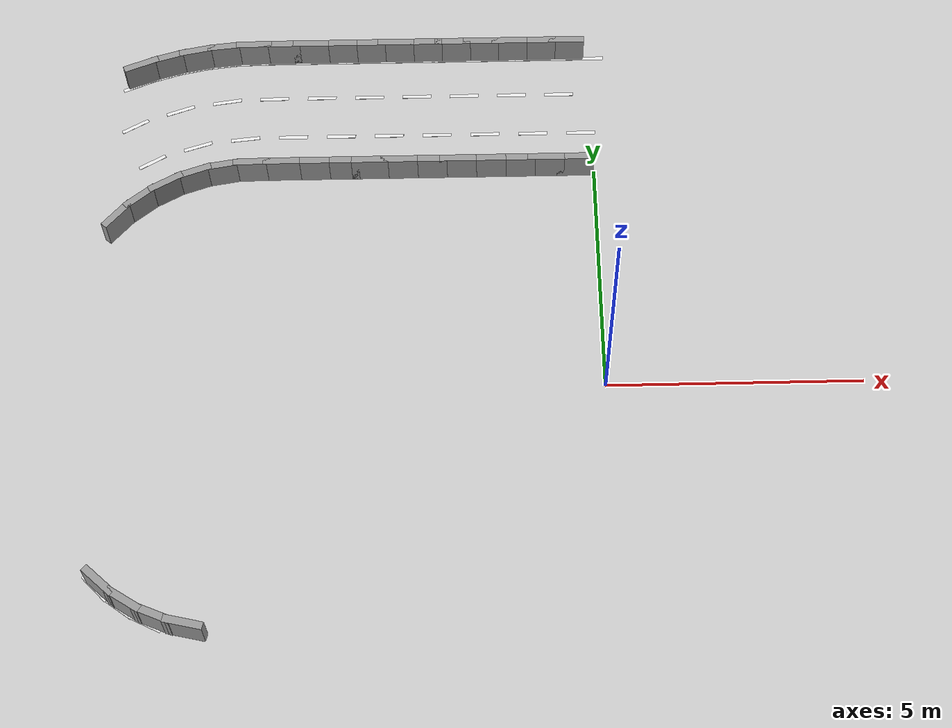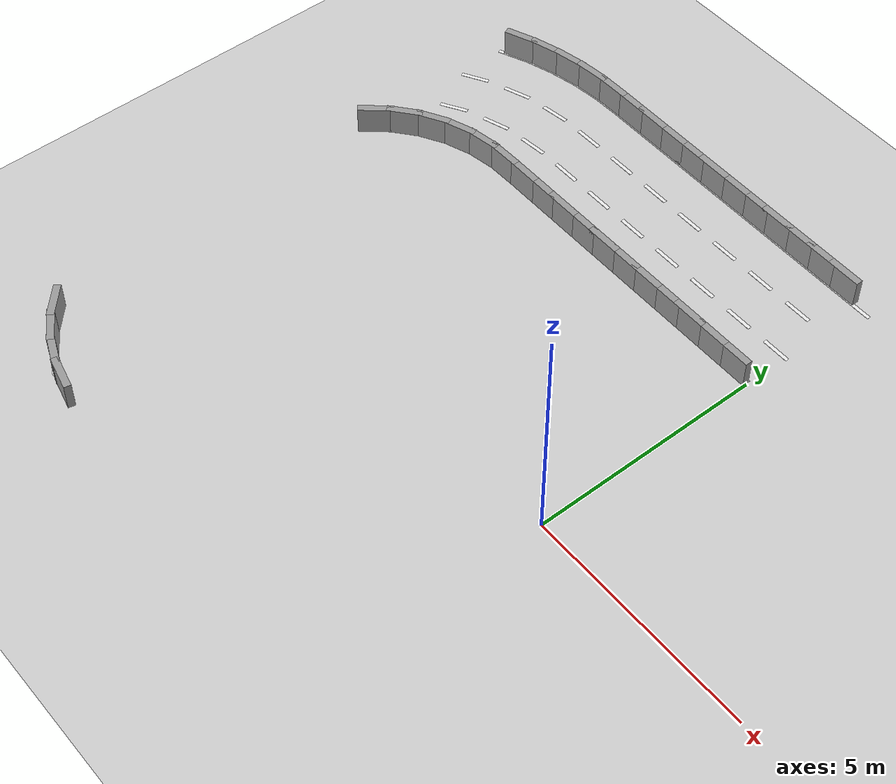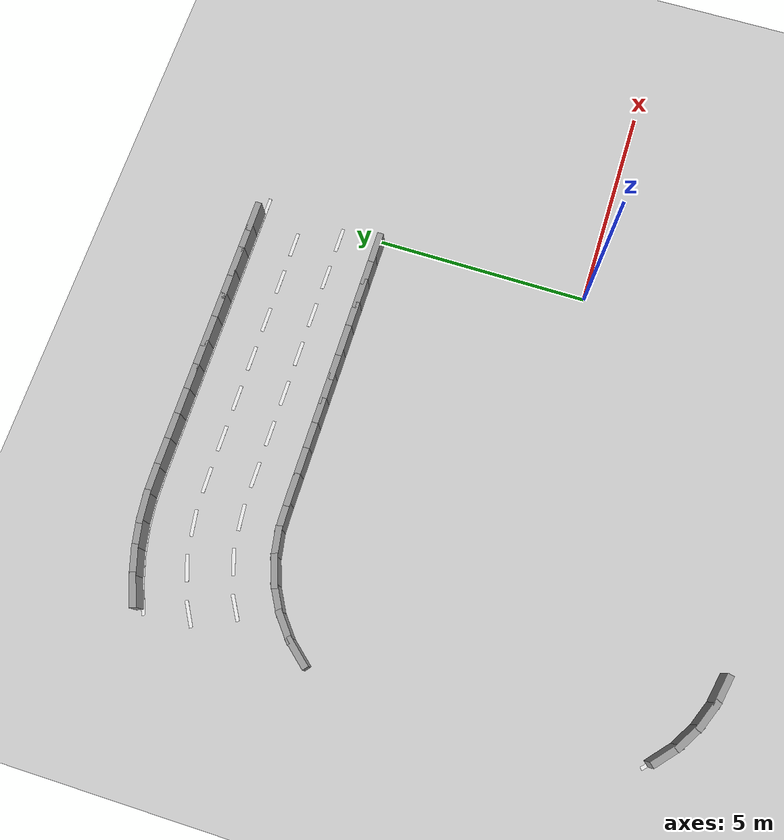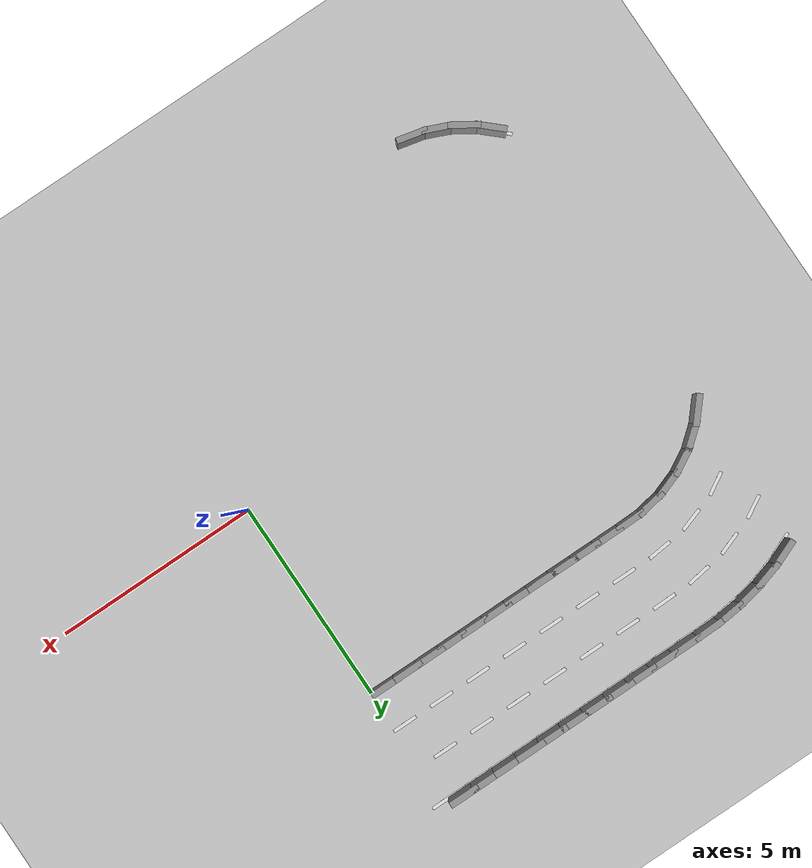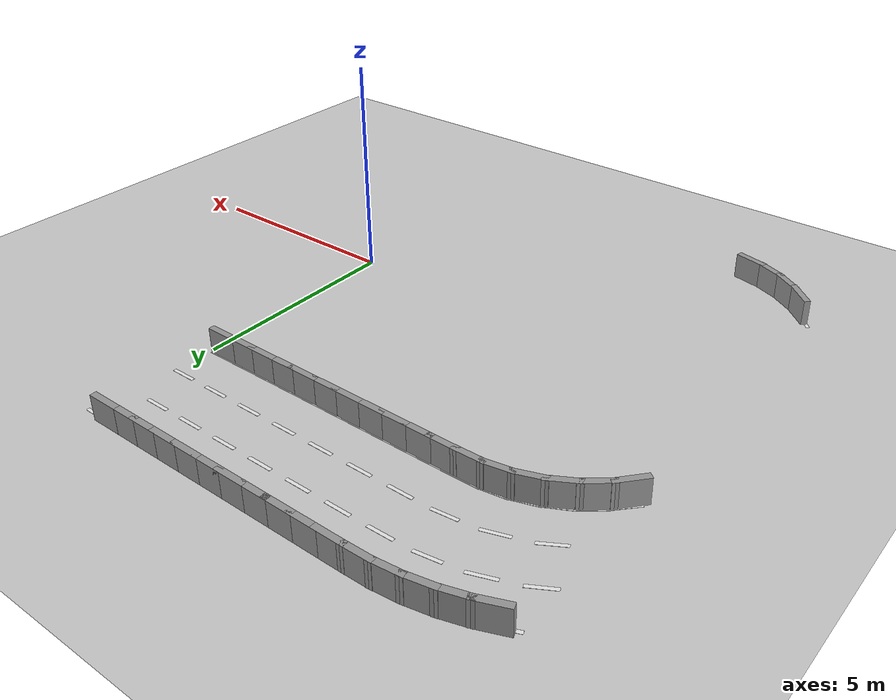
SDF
<sdf version="1.7">
 <world name="default">
  <model name="ground_plane">
   <static>1</static>
   <link name="link">
    <collision name="collision">
     <geometry><plane><normal>0 0 1</normal><size>100 100</size></plane></geometry>
     <surface><friction><ode><mu>100</mu><mu2>50</mu2></ode></friction></surface>
    </collision>
    <visual name="visual">
     <cast_shadows>0</cast_shadows>
     <geometry><plane><normal>0 0 1</normal><size>100 100</size></plane></geometry>
     <material>
      <script><uri>file://media/materials/scripts/gazebo.material</uri><name>Gazebo/Grey</name></script>
     </material>
    </visual>
   </link>
  </model>
  <model name="superspeedway">
   <link name="Wall_21">
    <collision name="Wall_21_Collision">
     <geometry><box><size>0.7500 0.1500 0.6000</size></box></geometry>
     <pose>0 0 0.3000 0 -0 0</pose>
    </collision>
    <visual name="Wall_21_Visual">
     <pose>0 0 0.3000 0 -0 0</pose>
     <geometry><box><size>0.7500 0.1500 0.6000</size></box></geometry>
     <material>
      <script><uri>file://media/materials/scripts/gazebo.material</uri><name>Gazebo/Grey</name></script>
      <ambient>1 1 1 1</ambient>
     </material>
    </visual>
    <pose>-0.4022 5.0000 0 0 -0 3.14159</pose>
   </link>
   <link name="Wall_22">
    <collision name="Wall_22_Collision">
     <geometry><box><size>0.7500 0.1500 0.6000</size></box></geometry>
     <pose>0 0 0.3000 0 -0 0</pose>
    </collision>
    <visual name="Wall_22_Visual">
     <pose>0 0 0.3000 0 -0 0</pose>
     <geometry><box><size>0.7500 0.1500 0.6000</size></box></geometry>
     <material>
      <script><uri>file://media/materials/scripts/gazebo.material</uri><name>Gazebo/Grey</name></script>
      <ambient>1 1 1 1</ambient>
     </material>
    </visual>
    <pose>-1.0022 5.0000 0 0 -0 3.14159</pose>
   </link>
   <link name="Wall_23">
    <collision name="Wall_23_Collision">
     <geometry><box><size>0.7500 0.1500 0.6000</size></box></geometry>
     <pose>0 0 0.3000 0 -0 0</pose>
    </collision>
    <visual name="Wall_23_Visual">
     <pose>0 0 0.3000 0 -0 0</pose>
     <geometry><box><size>0.7500 0.1500 0.6000</size></box></geometry>
     <material>
      <script><uri>file://media/materials/scripts/gazebo.material</uri><name>Gazebo/Grey</name></script>
      <ambient>1 1 1 1</ambient>
     </material>
    </visual>
    <pose>-1.6022 5.0000 0 0 -0 3.14159</pose>
   </link>
   <link name="Wall_24">
    <collision name="Wall_24_Collision">
     <geometry><box><size>0.7500 0.1500 0.6000</size></box></geometry>
     <pose>0 0 0.3000 0 -0 0</pose>
    </collision>
    <visual name="Wall_24_Visual">
     <pose>0 0 0.3000 0 -0 0</pose>
     <geometry><box><size>0.7500 0.1500 0.6000</size></box></geometry>
     <material>
      <script><uri>file://media/materials/scripts/gazebo.material</uri><name>Gazebo/Grey</name></script>
      <ambient>1 1 1 1</ambient>
     </material>
    </visual>
    <pose>-2.2022 5.0000 0 0 -0 3.14159</pose>
   </link>
   <link name="Wall_25">
    <collision name="Wall_25_Collision">
     <geometry><box><size>0.7500 0.1500 0.6000</size></box></geometry>
     <pose>0 0 0.3000 0 -0 0</pose>
    </collision>
    <visual name="Wall_25_Visual">
     <pose>0 0 0.3000 0 -0 0</pose>
     <geometry><box><size>0.7500 0.1500 0.6000</size></box></geometry>
     <material>
      <script><uri>file://media/materials/scripts/gazebo.material</uri><name>Gazebo/Grey</name></script>
      <ambient>1 1 1 1</ambient>
     </material>
    </visual>
    <pose>-2.8022 5.0000 0 0 -0 3.14159</pose>
   </link>
   <link name="Wall_26">
    <collision name="Wall_26_Collision">
     <geometry><box><size>0.7500 0.1500 0.6000</size></box></geometry>
     <pose>0 0 0.3000 0 -0 0</pose>
    </collision>
    <visual name="Wall_26_Visual">
     <pose>0 0 0.3000 0 -0 0</pose>
     <geometry><box><size>0.7500 0.1500 0.6000</size></box></geometry>
     <material>
      <script><uri>file://media/materials/scripts/gazebo.material</uri><name>Gazebo/Grey</name></script>
      <ambient>1 1 1 1</ambient>
     </material>
    </visual>
    <pose>-3.4022 5.0000 0 0 -0 3.14159</pose>
   </link>
   <link name="Wall_27">
    <collision name="Wall_27_Collision">
     <geometry><box><size>0.7500 0.1500 0.6000</size></box></geometry>
     <pose>0 0 0.3000 0 -0 0</pose>
    </collision>
    <visual name="Wall_27_Visual">
     <pose>0 0 0.3000 0 -0 0</pose>
     <geometry><box><size>0.7500 0.1500 0.6000</size></box></geometry>
     <material>
      <script><uri>file://media/materials/scripts/gazebo.material</uri><name>Gazebo/Grey</name></script>
      <ambient>1 1 1 1</ambient>
     </material>
    </visual>
    <pose>-4.0022 5.0000 0 0 -0 3.14159</pose>
   </link>
   <link name="Wall_28">
    <collision name="Wall_28_Collision">
     <geometry><box><size>0.7500 0.1500 0.6000</size></box></geometry>
     <pose>0 0 0.3000 0 -0 0</pose>
    </collision>
    <visual name="Wall_28_Visual">
     <pose>0 0 0.3000 0 -0 0</pose>
     <geometry><box><size>0.7500 0.1500 0.6000</size></box></geometry>
     <material>
      <script><uri>file://media/materials/scripts/gazebo.material</uri><name>Gazebo/Grey</name></script>
      <ambient>1 1 1 1</ambient>
     </material>
    </visual>
    <pose>-4.6022 5.0000 0 0 -0 3.14159</pose>
   </link>
   <link name="Wall_29">
    <collision name="Wall_29_Collision">
     <geometry><box><size>0.7500 0.1500 0.6000</size></box></geometry>
     <pose>0 0 0.3000 0 -0 0</pose>
    </collision>
    <visual name="Wall_29_Visual">
     <pose>0 0 0.3000 0 -0 0</pose>
     <geometry><box><size>0.7500 0.1500 0.6000</size></box></geometry>
     <material>
      <script><uri>file://media/materials/scripts/gazebo.material</uri><name>Gazebo/Grey</name></script>
      <ambient>1 1 1 1</ambient>
     </material>
    </visual>
    <pose>-5.2022 5.0000 0 0 -0 3.14159</pose>
   </link>
   <link name="Wall_30">
    <collision name="Wall_30_Collision">
     <geometry><box><size>0.7500 0.1500 0.6000</size></box></geometry>
     <pose>0 0 0.3000 0 -0 0</pose>
    </collision>
    <visual name="Wall_30_Visual">
     <pose>0 0 0.3000 0 -0 0</pose>
     <geometry><box><size>0.7500 0.1500 0.6000</size></box></geometry>
     <material>
      <script><uri>file://media/materials/scripts/gazebo.material</uri><name>Gazebo/Grey</name></script>
      <ambient>1 1 1 1</ambient>
     </material>
    </visual>
    <pose>-5.8022 5.0000 0 0 -0 3.14159</pose>
   </link>
   <link name="Wall_31">
    <collision name="Wall_31_Collision">
     <geometry><box><size>0.7500 0.1500 0.6000</size></box></geometry>
     <pose>0 0 0.3000 0 -0 0</pose>
    </collision>
    <visual name="Wall_31_Visual">
     <pose>0 0 0.3000 0 -0 0</pose>
     <geometry><box><size>0.7500 0.1500 0.6000</size></box></geometry>
     <material>
      <script><uri>file://media/materials/scripts/gazebo.material</uri><name>Gazebo/Grey</name></script>
      <ambient>1 1 1 1</ambient>
     </material>
    </visual>
    <pose>-6.4022 5.0000 0 0 -0 3.14159</pose>
   </link>
   <link name="Wall_32">
    <collision name="Wall_32_Collision">
     <geometry><box><size>0.7498 0.1500 0.6000</size></box></geometry>
     <pose>0 0 0.3000 0 -0 0</pose>
    </collision>
    <visual name="Wall_32_Visual">
     <pose>0 0 0.3000 0 -0 0</pose>
     <geometry><box><size>0.7498 0.1500 0.6000</size></box></geometry>
     <material>
      <script><uri>file://media/materials/scripts/gazebo.material</uri><name>Gazebo/Grey</name></script>
      <ambient>1 1 1 1</ambient>
     </material>
    </visual>
    <pose>-7.0020 4.9935 0 0 -0 -3.11984</pose>
   </link>
   <link name="Wall_33">
    <collision name="Wall_33_Collision">
     <geometry><box><size>0.7493 0.1500 0.6000</size></box></geometry>
     <pose>0 0 0.3000 0 -0 0</pose>
    </collision>
    <visual name="Wall_33_Visual">
     <pose>0 0 0.3000 0 -0 0</pose>
     <geometry><box><size>0.7493 0.1500 0.6000</size></box></geometry>
     <material>
      <script><uri>file://media/materials/scripts/gazebo.material</uri><name>Gazebo/Grey</name></script>
      <ambient>1 1 1 1</ambient>
     </material>
    </visual>
    <pose>-7.5970 4.9357 0 0 -0 -2.96953</pose>
   </link>
   <link name="Wall_34">
    <collision name="Wall_34_Collision">
     <geometry><box><size>0.7493 0.1500 0.6000</size></box></geometry>
     <pose>0 0 0.3000 0 -0 0</pose>
    </collision>
    <visual name="Wall_34_Visual">
     <pose>0 0 0.3000 0 -0 0</pose>
     <geometry><box><size>0.7493 0.1500 0.6000</size></box></geometry>
     <material>
      <script><uri>file://media/materials/scripts/gazebo.material</uri><name>Gazebo/Grey</name></script>
      <ambient>1 1 1 1</ambient>
     </material>
    </visual>
    <pose>-8.1744 4.7834 0 0 -0 -2.79811</pose>
   </link>
   <link name="Wall_35">
    <collision name="Wall_35_Collision">
     <geometry><box><size>0.7493 0.1500 0.6000</size></box></geometry>
     <pose>0 0 0.3000 0 -0 0</pose>
    </collision>
    <visual name="Wall_35_Visual">
     <pose>0 0 0.3000 0 -0 0</pose>
     <geometry><box><size>0.7493 0.1500 0.6000</size></box></geometry>
     <material>
      <script><uri>file://media/materials/scripts/gazebo.material</uri><name>Gazebo/Grey</name></script>
      <ambient>1 1 1 1</ambient>
     </material>
    </visual>
    <pose>-8.7173 4.5350 0 0 -0 -2.62668</pose>
   </link>
   <link name="Wall_36">
    <collision name="Wall_36_Collision">
     <geometry><box><size>0.7493 0.1500 0.6000</size></box></geometry>
     <pose>0 0 0.3000 0 -0 0</pose>
    </collision>
    <visual name="Wall_36_Visual">
     <pose>0 0 0.3000 0 -0 0</pose>
     <geometry><box><size>0.7493 0.1500 0.6000</size></box></geometry>
     <material>
      <script><uri>file://media/materials/scripts/gazebo.material</uri><name>Gazebo/Grey</name></script>
      <ambient>1 1 1 1</ambient>
     </material>
    </visual>
    <pose>-9.2098 4.1975 0 0 -0 -2.45525</pose>
   </link>
   <link name="Wall_37">
    <collision name="Wall_37_Collision">
     <geometry><box><size>0.7493 0.1500 0.6000</size></box></geometry>
     <pose>0 0 0.3000 0 -0 0</pose>
    </collision>
    <visual name="Wall_37_Visual">
     <pose>0 0 0.3000 0 -0 0</pose>
     <geometry><box><size>0.7493 0.1500 0.6000</size></box></geometry>
     <material>
      <script><uri>file://media/materials/scripts/gazebo.material</uri><name>Gazebo/Grey</name></script>
      <ambient>1 1 1 1</ambient>
     </material>
    </visual>
    <pose>-9.6376 3.7810 0 0 -0 -2.28382</pose>
   </link>
   <link name="Wall_51">
    <collision name="Wall_51_Collision">
     <geometry><box><size>0.7493 0.1500 0.6000</size></box></geometry>
     <pose>0 0 0.3000 0 -0 0</pose>
    </collision>
    <visual name="Wall_51_Visual">
     <pose>0 0 0.3000 0 -0 0</pose>
     <geometry><box><size>0.7493 0.1500 0.6000</size></box></geometry>
     <material>
      <script><uri>file://media/materials/scripts/gazebo.material</uri><name>Gazebo/Grey</name></script>
      <ambient>1 1 1 1</ambient>
     </material>
    </visual>
    <pose>-9.3538 -4.0729 0 0 -0 -0.74096</pose>
   </link>
   <link name="Wall_52">
    <collision name="Wall_52_Collision">
     <geometry><box><size>0.7493 0.1500 0.6000</size></box></geometry>
     <pose>0 0 0.3000 0 -0 0</pose>
    </collision>
    <visual name="Wall_52_Visual">
     <pose>0 0 0.3000 0 -0 0</pose>
     <geometry><box><size>0.7493 0.1500 0.6000</size></box></geometry>
     <material>
      <script><uri>file://media/materials/scripts/gazebo.material</uri><name>Gazebo/Grey</name></script>
      <ambient>1 1 1 1</ambient>
     </material>
    </visual>
    <pose>-8.8804 -4.4367 0 0 -0 -0.56954</pose>
   </link>
   <link name="Wall_53">
    <collision name="Wall_53_Collision">
     <geometry><box><size>0.7493 0.1500 0.6000</size></box></geometry>
     <pose>0 0 0.3000 0 -0 0</pose>
    </collision>
    <visual name="Wall_53_Visual">
     <pose>0 0 0.3000 0 -0 0</pose>
     <geometry><box><size>0.7493 0.1500 0.6000</size></box></geometry>
     <material>
      <script><uri>file://media/materials/scripts/gazebo.material</uri><name>Gazebo/Grey</name></script>
      <ambient>1 1 1 1</ambient>
     </material>
    </visual>
    <pose>-8.3519 -4.7144 0 0 -0 -0.39811</pose>
   </link>
   <link name="Wall_54">
    <collision name="Wall_54_Collision">
     <geometry><box><size>0.7493 0.1500 0.6000</size></box></geometry>
     <pose>0 0 0.3000 0 -0 0</pose>
    </collision>
    <visual name="Wall_54_Visual">
     <pose>0 0 0.3000 0 -0 0</pose>
     <geometry><box><size>0.7493 0.1500 0.6000</size></box></geometry>
     <material>
      <script><uri>file://media/materials/scripts/gazebo.material</uri><name>Gazebo/Grey</name></script>
      <ambient>1 1 1 1</ambient>
     </material>
    </visual>
    <pose>-7.7837 -4.8979 0 0 -0 -0.22668</pose>
   </link>
   <link name="Wall_122">
    <collision name="Wall_122_Collision">
     <geometry><box><size>0.7500 0.1500 0.6000</size></box></geometry>
     <pose>0 0 0.3000 0 -0 0</pose>
    </collision>
    <visual name="Wall_122_Visual">
     <pose>0 0 0.3000 0 -0 0</pose>
     <geometry><box><size>0.7500 0.1500 0.6000</size></box></geometry>
     <material>
      <script><uri>file://media/materials/scripts/gazebo.material</uri><name>Gazebo/Grey</name></script>
      <ambient>1 1 1 1</ambient>
     </material>
    </visual>
    <pose>-0.4899 8.0000 0 0 -0 3.14159</pose>
   </link>
   <link name="Wall_123">
    <collision name="Wall_123_Collision">
     <geometry><box><size>0.7500 0.1500 0.6000</size></box></geometry>
     <pose>0 0 0.3000 0 -0 0</pose>
    </collision>
    <visual name="Wall_123_Visual">
     <pose>0 0 0.3000 0 -0 0</pose>
     <geometry><box><size>0.7500 0.1500 0.6000</size></box></geometry>
     <material>
      <script><uri>file://media/materials/scripts/gazebo.material</uri><name>Gazebo/Grey</name></script>
      <ambient>1 1 1 1</ambient>
     </material>
    </visual>
    <pose>-1.0899 8.0000 0 0 -0 3.14159</pose>
   </link>
   <link name="Wall_124">
    <collision name="Wall_124_Collision">
     <geometry><box><size>0.7500 0.1500 0.6000</size></box></geometry>
     <pose>0 0 0.3000 0 -0 0</pose>
    </collision>
    <visual name="Wall_124_Visual">
     <pose>0 0 0.3000 0 -0 0</pose>
     <geometry><box><size>0.7500 0.1500 0.6000</size></box></geometry>
     <material>
      <script><uri>file://media/materials/scripts/gazebo.material</uri><name>Gazebo/Grey</name></script>
      <ambient>1 1 1 1</ambient>
     </material>
    </visual>
    <pose>-1.6899 8.0000 0 0 -0 3.14159</pose>
   </link>
   <link name="Wall_125">
    <collision name="Wall_125_Collision">
     <geometry><box><size>0.7500 0.1500 0.6000</size></box></geometry>
     <pose>0 0 0.3000 0 -0 0</pose>
    </collision>
    <visual name="Wall_125_Visual">
     <pose>0 0 0.3000 0 -0 0</pose>
     <geometry><box><size>0.7500 0.1500 0.6000</size></box></geometry>
     <material>
      <script><uri>file://media/materials/scripts/gazebo.material</uri><name>Gazebo/Grey</name></script>
      <ambient>1 1 1 1</ambient>
     </material>
    </visual>
    <pose>-2.2899 8.0000 0 0 -0 3.14159</pose>
   </link>
   <link name="Wall_126">
    <collision name="Wall_126_Collision">
     <geometry><box><size>0.7500 0.1500 0.6000</size></box></geometry>
     <pose>0 0 0.3000 0 -0 0</pose>
    </collision>
    <visual name="Wall_126_Visual">
     <pose>0 0 0.3000 0 -0 0</pose>
     <geometry><box><size>0.7500 0.1500 0.6000</size></box></geometry>
     <material>
      <script><uri>file://media/materials/scripts/gazebo.material</uri><name>Gazebo/Grey</name></script>
      <ambient>1 1 1 1</ambient>
     </material>
    </visual>
    <pose>-2.8899 8.0000 0 0 -0 3.14159</pose>
   </link>
   <link name="Wall_127">
    <collision name="Wall_127_Collision">
     <geometry><box><size>0.7500 0.1500 0.6000</size></box></geometry>
     <pose>0 0 0.3000 0 -0 0</pose>
    </collision>
    <visual name="Wall_127_Visual">
     <pose>0 0 0.3000 0 -0 0</pose>
     <geometry><box><size>0.7500 0.1500 0.6000</size></box></geometry>
     <material>
      <script><uri>file://media/materials/scripts/gazebo.material</uri><name>Gazebo/Grey</name></script>
      <ambient>1 1 1 1</ambient>
     </material>
    </visual>
    <pose>-3.4899 8.0000 0 0 -0 3.14159</pose>
   </link>
   <link name="Wall_128">
    <collision name="Wall_128_Collision">
     <geometry><box><size>0.7500 0.1500 0.6000</size></box></geometry>
     <pose>0 0 0.3000 0 -0 0</pose>
    </collision>
    <visual name="Wall_128_Visual">
     <pose>0 0 0.3000 0 -0 0</pose>
     <geometry><box><size>0.7500 0.1500 0.6000</size></box></geometry>
     <material>
      <script><uri>file://media/materials/scripts/gazebo.material</uri><name>Gazebo/Grey</name></script>
      <ambient>1 1 1 1</ambient>
     </material>
    </visual>
    <pose>-4.0899 8.0000 0 0 -0 3.14159</pose>
   </link>
   <link name="Wall_129">
    <collision name="Wall_129_Collision">
     <geometry><box><size>0.7500 0.1500 0.6000</size></box></geometry>
     <pose>0 0 0.3000 0 -0 0</pose>
    </collision>
    <visual name="Wall_129_Visual">
     <pose>0 0 0.3000 0 -0 0</pose>
     <geometry><box><size>0.7500 0.1500 0.6000</size></box></geometry>
     <material>
      <script><uri>file://media/materials/scripts/gazebo.material</uri><name>Gazebo/Grey</name></script>
      <ambient>1 1 1 1</ambient>
     </material>
    </visual>
    <pose>-4.6899 8.0000 0 0 -0 3.14159</pose>
   </link>
   <link name="Wall_130">
    <collision name="Wall_130_Collision">
     <geometry><box><size>0.7500 0.1500 0.6000</size></box></geometry>
     <pose>0 0 0.3000 0 -0 0</pose>
    </collision>
    <visual name="Wall_130_Visual">
     <pose>0 0 0.3000 0 -0 0</pose>
     <geometry><box><size>0.7500 0.1500 0.6000</size></box></geometry>
     <material>
      <script><uri>file://media/materials/scripts/gazebo.material</uri><name>Gazebo/Grey</name></script>
      <ambient>1 1 1 1</ambient>
     </material>
    </visual>
    <pose>-5.2899 8.0000 0 0 -0 3.14159</pose>
   </link>
   <link name="Wall_131">
    <collision name="Wall_131_Collision">
     <geometry><box><size>0.7500 0.1500 0.6000</size></box></geometry>
     <pose>0 0 0.3000 0 -0 0</pose>
    </collision>
    <visual name="Wall_131_Visual">
     <pose>0 0 0.3000 0 -0 0</pose>
     <geometry><box><size>0.7500 0.1500 0.6000</size></box></geometry>
     <material>
      <script><uri>file://media/materials/scripts/gazebo.material</uri><name>Gazebo/Grey</name></script>
      <ambient>1 1 1 1</ambient>
     </material>
    </visual>
    <pose>-5.8899 8.0000 0 0 -0 3.14159</pose>
   </link>
   <link name="Wall_132">
    <collision name="Wall_132_Collision">
     <geometry><box><size>0.7500 0.1500 0.6000</size></box></geometry>
     <pose>0 0 0.3000 0 -0 0</pose>
    </collision>
    <visual name="Wall_132_Visual">
     <pose>0 0 0.3000 0 -0 0</pose>
     <geometry><box><size>0.7500 0.1500 0.6000</size></box></geometry>
     <material>
      <script><uri>file://media/materials/scripts/gazebo.material</uri><name>Gazebo/Grey</name></script>
      <ambient>1 1 1 1</ambient>
     </material>
    </visual>
    <pose>-6.4899 8.0000 0 0 -0 3.14159</pose>
   </link>
   <link name="Wall_133">
    <collision name="Wall_133_Collision">
     <geometry><box><size>0.7499 0.1500 0.6000</size></box></geometry>
     <pose>0 0 0.3000 0 -0 0</pose>
    </collision>
    <visual name="Wall_133_Visual">
     <pose>0 0 0.3000 0 -0 0</pose>
     <geometry><box><size>0.7499 0.1500 0.6000</size></box></geometry>
     <material>
      <script><uri>file://media/materials/scripts/gazebo.material</uri><name>Gazebo/Grey</name></script>
      <ambient>1 1 1 1</ambient>
     </material>
    </visual>
    <pose>-7.0897 7.9941 0 0 -0 -3.12208</pose>
   </link>
   <link name="Wall_134">
    <collision name="Wall_134_Collision">
     <geometry><box><size>0.7498 0.1500 0.6000</size></box></geometry>
     <pose>0 0 0.3000 0 -0 0</pose>
    </collision>
    <visual name="Wall_134_Visual">
     <pose>0 0 0.3000 0 -0 0</pose>
     <geometry><box><size>0.7498 0.1500 0.6000</size></box></geometry>
     <material>
      <script><uri>file://media/materials/scripts/gazebo.material</uri><name>Gazebo/Grey</name></script>
      <ambient>1 1 1 1</ambient>
     </material>
    </visual>
    <pose>-7.6878 7.9565 0 0 -0 -3.03547</pose>
   </link>
   <link name="Wall_135">
    <collision name="Wall_135_Collision">
     <geometry><box><size>0.7498 0.1500 0.6000</size></box></geometry>
     <pose>0 0 0.3000 0 -0 0</pose>
    </collision>
    <visual name="Wall_135_Visual">
     <pose>0 0 0.3000 0 -0 0</pose>
     <geometry><box><size>0.7498 0.1500 0.6000</size></box></geometry>
     <material>
      <script><uri>file://media/materials/scripts/gazebo.material</uri><name>Gazebo/Grey</name></script>
      <ambient>1 1 1 1</ambient>
     </material>
    </visual>
    <pose>-8.2800 7.8656 0 0 -0 -2.94314</pose>
   </link>
   <link name="Wall_136">
    <collision name="Wall_136_Collision">
     <geometry><box><size>0.7498 0.1500 0.6000</size></box></geometry>
     <pose>0 0 0.3000 0 -0 0</pose>
    </collision>
    <visual name="Wall_136_Visual">
     <pose>0 0 0.3000 0 -0 0</pose>
     <geometry><box><size>0.7498 0.1500 0.6000</size></box></geometry>
     <material>
      <script><uri>file://media/materials/scripts/gazebo.material</uri><name>Gazebo/Grey</name></script>
      <ambient>1 1 1 1</ambient>
     </material>
    </visual>
    <pose>-8.8614 7.7206 0 0 -0 -2.85086</pose>
   </link>
   <link name="Wall_137">
    <collision name="Wall_137_Collision">
     <geometry><box><size>0.7498 0.1500 0.6000</size></box></geometry>
     <pose>0 0 0.3000 0 -0 0</pose>
    </collision>
    <visual name="Wall_137_Visual">
     <pose>0 0 0.3000 0 -0 0</pose>
     <geometry><box><size>0.7498 0.1500 0.6000</size></box></geometry>
     <material>
      <script><uri>file://media/materials/scripts/gazebo.material</uri><name>Gazebo/Grey</name></script>
      <ambient>1 1 1 1</ambient>
     </material>
    </visual>
    <pose>-9.4268 7.5225 0 0 -0 -2.75853</pose>
   </link>
   <link name="Paint_21">
    <visual name="Paint_21_Visual">
     <pose>0 0 0.0020 0 -0 0</pose>
     <geometry><box><size>0.6800 0.0800 0.0040</size></box></geometry>
     <material>
      <script><uri>file://media/materials/scripts/gazebo.material</uri><name>Gazebo/White</name></script>
      <ambient>1 1 1 1</ambient>
     </material>
    </visual>
    <pose>-0.3544 5.0600 0 0 -0 3.14159</pose>
   </link>
   <link name="Paint_22">
    <visual name="Paint_22_Visual">
     <pose>0 0 0.0020 0 -0 0</pose>
     <geometry><box><size>0.6800 0.0800 0.0040</size></box></geometry>
     <material>
      <script><uri>file://media/materials/scripts/gazebo.material</uri><name>Gazebo/White</name></script>
      <ambient>1 1 1 1</ambient>
     </material>
    </visual>
    <pose>-0.9544 5.0600 0 0 -0 3.14159</pose>
   </link>
   <link name="Paint_23">
    <visual name="Paint_23_Visual">
     <pose>0 0 0.0020 0 -0 0</pose>
     <geometry><box><size>0.6800 0.0800 0.0040</size></box></geometry>
     <material>
      <script><uri>file://media/materials/scripts/gazebo.material</uri><name>Gazebo/White</name></script>
      <ambient>1 1 1 1</ambient>
     </material>
    </visual>
    <pose>-1.5544 5.0600 0 0 -0 3.14159</pose>
   </link>
   <link name="Paint_24">
    <visual name="Paint_24_Visual">
     <pose>0 0 0.0020 0 -0 0</pose>
     <geometry><box><size>0.6800 0.0800 0.0040</size></box></geometry>
     <material>
      <script><uri>file://media/materials/scripts/gazebo.material</uri><name>Gazebo/White</name></script>
      <ambient>1 1 1 1</ambient>
     </material>
    </visual>
    <pose>-2.1544 5.0600 0 0 -0 3.14159</pose>
   </link>
   <link name="Paint_25">
    <visual name="Paint_25_Visual">
     <pose>0 0 0.0020 0 -0 0</pose>
     <geometry><box><size>0.6800 0.0800 0.0040</size></box></geometry>
     <material>
      <script><uri>file://media/materials/scripts/gazebo.material</uri><name>Gazebo/White</name></script>
      <ambient>1 1 1 1</ambient>
     </material>
    </visual>
    <pose>-2.7544 5.0600 0 0 -0 3.14159</pose>
   </link>
   <link name="Paint_26">
    <visual name="Paint_26_Visual">
     <pose>0 0 0.0020 0 -0 0</pose>
     <geometry><box><size>0.6800 0.0800 0.0040</size></box></geometry>
     <material>
      <script><uri>file://media/materials/scripts/gazebo.material</uri><name>Gazebo/White</name></script>
      <ambient>1 1 1 1</ambient>
     </material>
    </visual>
    <pose>-3.3544 5.0600 0 0 -0 3.14159</pose>
   </link>
   <link name="Paint_27">
    <visual name="Paint_27_Visual">
     <pose>0 0 0.0020 0 -0 0</pose>
     <geometry><box><size>0.6800 0.0800 0.0040</size></box></geometry>
     <material>
      <script><uri>file://media/materials/scripts/gazebo.material</uri><name>Gazebo/White</name></script>
      <ambient>1 1 1 1</ambient>
     </material>
    </visual>
    <pose>-3.9544 5.0600 0 0 -0 3.14159</pose>
   </link>
   <link name="Paint_28">
    <visual name="Paint_28_Visual">
     <pose>0 0 0.0020 0 -0 0</pose>
     <geometry><box><size>0.6800 0.0800 0.0040</size></box></geometry>
     <material>
      <script><uri>file://media/materials/scripts/gazebo.material</uri><name>Gazebo/White</name></script>
      <ambient>1 1 1 1</ambient>
     </material>
    </visual>
    <pose>-4.5544 5.0600 0 0 -0 3.14159</pose>
   </link>
   <link name="Paint_29">
    <visual name="Paint_29_Visual">
     <pose>0 0 0.0020 0 -0 0</pose>
     <geometry><box><size>0.6800 0.0800 0.0040</size></box></geometry>
     <material>
      <script><uri>file://media/materials/scripts/gazebo.material</uri><name>Gazebo/White</name></script>
      <ambient>1 1 1 1</ambient>
     </material>
    </visual>
    <pose>-5.1544 5.0600 0 0 -0 3.14159</pose>
   </link>
   <link name="Paint_30">
    <visual name="Paint_30_Visual">
     <pose>0 0 0.0020 0 -0 0</pose>
     <geometry><box><size>0.6800 0.0800 0.0040</size></box></geometry>
     <material>
      <script><uri>file://media/materials/scripts/gazebo.material</uri><name>Gazebo/White</name></script>
      <ambient>1 1 1 1</ambient>
     </material>
    </visual>
    <pose>-5.7544 5.0600 0 0 -0 3.14159</pose>
   </link>
   <link name="Paint_31">
    <visual name="Paint_31_Visual">
     <pose>0 0 0.0020 0 -0 0</pose>
     <geometry><box><size>0.6800 0.0800 0.0040</size></box></geometry>
     <material>
      <script><uri>file://media/materials/scripts/gazebo.material</uri><name>Gazebo/White</name></script>
      <ambient>1 1 1 1</ambient>
     </material>
    </visual>
    <pose>-6.3544 5.0600 0 0 -0 -3.14148</pose>
   </link>
   <link name="Paint_32">
    <visual name="Paint_32_Visual">
     <pose>0 0 0.0020 0 -0 0</pose>
     <geometry><box><size>0.6799 0.0800 0.0040</size></box></geometry>
     <material>
      <script><uri>file://media/materials/scripts/gazebo.material</uri><name>Gazebo/White</name></script>
      <ambient>1 1 1 1</ambient>
     </material>
    </visual>
    <pose>-6.9544 5.0560 0 0 -0 -3.13003</pose>
   </link>
   <link name="Paint_33">
    <visual name="Paint_33_Visual">
     <pose>0 0 0.0020 0 -0 0</pose>
     <geometry><box><size>0.6799 0.0800 0.0040</size></box></geometry>
     <material>
      <script><uri>file://media/materials/scripts/gazebo.material</uri><name>Gazebo/White</name></script>
      <ambient>1 1 1 1</ambient>
     </material>
    </visual>
    <pose>-7.5507 5.0040 0 0 -0 -2.99687</pose>
   </link>
   <link name="Paint_34">
    <visual name="Paint_34_Visual">
     <pose>0 0 0.0020 0 -0 0</pose>
     <geometry><box><size>0.6799 0.0800 0.0040</size></box></geometry>
     <material>
      <script><uri>file://media/materials/scripts/gazebo.material</uri><name>Gazebo/White</name></script>
      <ambient>1 1 1 1</ambient>
     </material>
    </visual>
    <pose>-8.1313 4.8617 0 0 -0 -2.82815</pose>
   </link>
   <link name="Paint_35">
    <visual name="Paint_35_Visual">
     <pose>0 0 0.0020 0 -0 0</pose>
     <geometry><box><size>0.6799 0.0800 0.0040</size></box></geometry>
     <material>
      <script><uri>file://media/materials/scripts/gazebo.material</uri><name>Gazebo/White</name></script>
      <ambient>1 1 1 1</ambient>
     </material>
    </visual>
    <pose>-8.6798 4.6239 0 0 -0 -2.65940</pose>
   </link>
   <link name="Paint_36">
    <visual name="Paint_36_Visual">
     <pose>0 0 0.0020 0 -0 0</pose>
     <geometry><box><size>0.6799 0.0800 0.0040</size></box></geometry>
     <material>
      <script><uri>file://media/materials/scripts/gazebo.material</uri><name>Gazebo/White</name></script>
      <ambient>1 1 1 1</ambient>
     </material>
    </visual>
    <pose>-9.1805 4.2974 0 0 -0 -2.49067</pose>
   </link>
   <link name="Paint_37">
    <visual name="Paint_37_Visual">
     <pose>0 0 0.0020 0 -0 0</pose>
     <geometry><box><size>0.6799 0.0800 0.0040</size></box></geometry>
     <material>
      <script><uri>file://media/materials/scripts/gazebo.material</uri><name>Gazebo/White</name></script>
      <ambient>1 1 1 1</ambient>
     </material>
    </visual>
    <pose>-9.6193 3.8914 0 0 -0 -2.32193</pose>
   </link>
   <link name="Paint_51">
    <visual name="Paint_51_Visual">
     <pose>0 0 0.0020 0 -0 0</pose>
     <geometry><box><size>0.6798 0.0800 0.0040</size></box></geometry>
     <material>
      <script><uri>file://media/materials/scripts/gazebo.material</uri><name>Gazebo/White</name></script>
      <ambient>1 1 1 1</ambient>
     </material>
    </visual>
    <pose>-9.5243 -3.9907 0 0 -0 -0.80328</pose>
   </link>
   <link name="Paint_52">
    <visual name="Paint_52_Visual">
     <pose>0 0 0.0020 0 -0 0</pose>
     <geometry><box><size>0.6798 0.0800 0.0040</size></box></geometry>
     <material>
      <script><uri>file://media/materials/scripts/gazebo.material</uri><name>Gazebo/White</name></script>
      <ambient>1 1 1 1</ambient>
     </material>
    </visual>
    <pose>-9.0701 -4.3792 0 0 -0 -0.63454</pose>
   </link>
   <link name="Paint_53">
    <visual name="Paint_53_Visual">
     <pose>0 0 0.0020 0 -0 0</pose>
     <geometry><box><size>0.6798 0.0800 0.0040</size></box></geometry>
     <material>
      <script><uri>file://media/materials/scripts/gazebo.material</uri><name>Gazebo/White</name></script>
      <ambient>1 1 1 1</ambient>
     </material>
    </visual>
    <pose>-8.5572 -4.6859 0 0 -0 -0.46582</pose>
   </link>
   <link name="Paint_122">
    <visual name="Paint_122_Visual">
     <pose>0 0 0.0020 0 -0 0</pose>
     <geometry><box><size>0.6800 0.0800 0.0040</size></box></geometry>
     <material>
      <script><uri>file://media/materials/scripts/gazebo.material</uri><name>Gazebo/White</name></script>
      <ambient>1 1 1 1</ambient>
     </material>
    </visual>
    <pose>-0.0278 7.9400 0 0 -0 3.14159</pose>
   </link>
   <link name="Paint_123">
    <visual name="Paint_123_Visual">
     <pose>0 0 0.0020 0 -0 0</pose>
     <geometry><box><size>0.6800 0.0800 0.0040</size></box></geometry>
     <material>
      <script><uri>file://media/materials/scripts/gazebo.material</uri><name>Gazebo/White</name></script>
      <ambient>1 1 1 1</ambient>
     </material>
    </visual>
    <pose>-0.6278 7.9400 0 0 -0 3.14159</pose>
   </link>
   <link name="Paint_124">
    <visual name="Paint_124_Visual">
     <pose>0 0 0.0020 0 -0 0</pose>
     <geometry><box><size>0.6800 0.0800 0.0040</size></box></geometry>
     <material>
      <script><uri>file://media/materials/scripts/gazebo.material</uri><name>Gazebo/White</name></script>
      <ambient>1 1 1 1</ambient>
     </material>
    </visual>
    <pose>-1.2278 7.9400 0 0 -0 3.14159</pose>
   </link>
   <link name="Paint_125">
    <visual name="Paint_125_Visual">
     <pose>0 0 0.0020 0 -0 0</pose>
     <geometry><box><size>0.6800 0.0800 0.0040</size></box></geometry>
     <material>
      <script><uri>file://media/materials/scripts/gazebo.material</uri><name>Gazebo/White</name></script>
      <ambient>1 1 1 1</ambient>
     </material>
    </visual>
    <pose>-1.8278 7.9400 0 0 -0 3.14159</pose>
   </link>
   <link name="Paint_126">
    <visual name="Paint_126_Visual">
     <pose>0 0 0.0020 0 -0 0</pose>
     <geometry><box><size>0.6800 0.0800 0.0040</size></box></geometry>
     <material>
      <script><uri>file://media/materials/scripts/gazebo.material</uri><name>Gazebo/White</name></script>
      <ambient>1 1 1 1</ambient>
     </material>
    </visual>
    <pose>-2.4278 7.9400 0 0 -0 3.14159</pose>
   </link>
   <link name="Paint_127">
    <visual name="Paint_127_Visual">
     <pose>0 0 0.0020 0 -0 0</pose>
     <geometry><box><size>0.6800 0.0800 0.0040</size></box></geometry>
     <material>
      <script><uri>file://media/materials/scripts/gazebo.material</uri><name>Gazebo/White</name></script>
      <ambient>1 1 1 1</ambient>
     </material>
    </visual>
    <pose>-3.0278 7.9400 0 0 -0 3.14159</pose>
   </link>
   <link name="Paint_128">
    <visual name="Paint_128_Visual">
     <pose>0 0 0.0020 0 -0 0</pose>
     <geometry><box><size>0.6800 0.0800 0.0040</size></box></geometry>
     <material>
      <script><uri>file://media/materials/scripts/gazebo.material</uri><name>Gazebo/White</name></script>
      <ambient>1 1 1 1</ambient>
     </material>
    </visual>
    <pose>-3.6278 7.9400 0 0 -0 3.14159</pose>
   </link>
   <link name="Paint_129">
    <visual name="Paint_129_Visual">
     <pose>0 0 0.0020 0 -0 0</pose>
     <geometry><box><size>0.6800 0.0800 0.0040</size></box></geometry>
     <material>
      <script><uri>file://media/materials/scripts/gazebo.material</uri><name>Gazebo/White</name></script>
      <ambient>1 1 1 1</ambient>
     </material>
    </visual>
    <pose>-4.2278 7.9400 0 0 -0 3.14159</pose>
   </link>
   <link name="Paint_130">
    <visual name="Paint_130_Visual">
     <pose>0 0 0.0020 0 -0 0</pose>
     <geometry><box><size>0.6800 0.0800 0.0040</size></box></geometry>
     <material>
      <script><uri>file://media/materials/scripts/gazebo.material</uri><name>Gazebo/White</name></script>
      <ambient>1 1 1 1</ambient>
     </material>
    </visual>
    <pose>-4.8278 7.9400 0 0 -0 3.14159</pose>
   </link>
   <link name="Paint_131">
    <visual name="Paint_131_Visual">
     <pose>0 0 0.0020 0 -0 0</pose>
     <geometry><box><size>0.6800 0.0800 0.0040</size></box></geometry>
     <material>
      <script><uri>file://media/materials/scripts/gazebo.material</uri><name>Gazebo/White</name></script>
      <ambient>1 1 1 1</ambient>
     </material>
    </visual>
    <pose>-5.4278 7.9400 0 0 -0 3.14159</pose>
   </link>
   <link name="Paint_132">
    <visual name="Paint_132_Visual">
     <pose>0 0 0.0020 0 -0 0</pose>
     <geometry><box><size>0.6800 0.0800 0.0040</size></box></geometry>
     <material>
      <script><uri>file://media/materials/scripts/gazebo.material</uri><name>Gazebo/White</name></script>
      <ambient>1 1 1 1</ambient>
     </material>
    </visual>
    <pose>-6.0278 7.9400 0 0 -0 3.14159</pose>
   </link>
   <link name="Paint_133">
    <visual name="Paint_133_Visual">
     <pose>0 0 0.0020 0 -0 0</pose>
     <geometry><box><size>0.6800 0.0800 0.0040</size></box></geometry>
     <material>
      <script><uri>file://media/materials/scripts/gazebo.material</uri><name>Gazebo/White</name></script>
      <ambient>1 1 1 1</ambient>
     </material>
    </visual>
    <pose>-6.6278 7.9399 0 0 -0 -3.14141</pose>
   </link>
   <link name="Paint_134">
    <visual name="Paint_134_Visual">
     <pose>0 0 0.0020 0 -0 0</pose>
     <geometry><box><size>0.6800 0.0800 0.0040</size></box></geometry>
     <material>
      <script><uri>file://media/materials/scripts/gazebo.material</uri><name>Gazebo/White</name></script>
      <ambient>1 1 1 1</ambient>
     </material>
    </visual>
    <pose>-7.2276 7.9294 0 0 -0 -3.11066</pose>
   </link>
   <link name="Paint_135">
    <visual name="Paint_135_Visual">
     <pose>0 0 0.0020 0 -0 0</pose>
     <geometry><box><size>0.6800 0.0800 0.0040</size></box></geometry>
     <material>
      <script><uri>file://media/materials/scripts/gazebo.material</uri><name>Gazebo/White</name></script>
      <ambient>1 1 1 1</ambient>
     </material>
    </visual>
    <pose>-7.8249 7.8798 0 0 -0 -3.01920</pose>
   </link>
   <link name="Paint_136">
    <visual name="Paint_136_Visual">
     <pose>0 0 0.0020 0 -0 0</pose>
     <geometry><box><size>0.6800 0.0800 0.0040</size></box></geometry>
     <material>
      <script><uri>file://media/materials/scripts/gazebo.material</uri><name>Gazebo/White</name></script>
      <ambient>1 1 1 1</ambient>
     </material>
    </visual>
    <pose>-8.4151 7.7754 0 0 -0 -2.92602</pose>
   </link>
   <link name="Paint_137">
    <visual name="Paint_137_Visual">
     <pose>0 0 0.0020 0 -0 0</pose>
     <geometry><box><size>0.6800 0.0800 0.0040</size></box></geometry>
     <material>
      <script><uri>file://media/materials/scripts/gazebo.material</uri><name>Gazebo/White</name></script>
      <ambient>1 1 1 1</ambient>
     </material>
    </visual>
    <pose>-8.9930 7.6164 0 0 -0 -2.83280</pose>
   </link>
   <link name="Paint_138">
    <visual name="Paint_138_Visual">
     <pose>0 0 0.0020 0 -0 0</pose>
     <geometry><box><size>0.6800 0.0800 0.0040</size></box></geometry>
     <material>
      <script><uri>file://media/materials/scripts/gazebo.material</uri><name>Gazebo/White</name></script>
      <ambient>1 1 1 1</ambient>
     </material>
    </visual>
    <pose>-9.5536 7.4044 0 0 -0 -2.73959</pose>
   </link>
   <link name="Paint_233">
    <visual name="Paint_233_Visual">
     <pose>0 0 0.0020 0 -0 0</pose>
     <geometry><box><size>0.6000 0.0800 0.0040</size></box></geometry>
     <material>
      <script><uri>file://media/materials/scripts/gazebo.material</uri><name>Gazebo/White</name></script>
      <ambient>1 1 1 1</ambient>
     </material>
    </visual>
    <pose>-0.2367 6.0000 0 0 -0 3.14159</pose>
   </link>
   <link name="Paint_234">
    <visual name="Paint_234_Visual">
     <pose>0 0 0.0020 0 -0 0</pose>
     <geometry><box><size>0.6000 0.0800 0.0040</size></box></geometry>
     <material>
      <script><uri>file://media/materials/scripts/gazebo.material</uri><name>Gazebo/White</name></script>
      <ambient>1 1 1 1</ambient>
     </material>
    </visual>
    <pose>-1.2367 6.0000 0 0 -0 3.14159</pose>
   </link>
   <link name="Paint_235">
    <visual name="Paint_235_Visual">
     <pose>0 0 0.0020 0 -0 0</pose>
     <geometry><box><size>0.6000 0.0800 0.0040</size></box></geometry>
     <material>
      <script><uri>file://media/materials/scripts/gazebo.material</uri><name>Gazebo/White</name></script>
      <ambient>1 1 1 1</ambient>
     </material>
    </visual>
    <pose>-2.2367 6.0000 0 0 -0 3.14159</pose>
   </link>
   <link name="Paint_236">
    <visual name="Paint_236_Visual">
     <pose>0 0 0.0020 0 -0 0</pose>
     <geometry><box><size>0.6000 0.0800 0.0040</size></box></geometry>
     <material>
      <script><uri>file://media/materials/scripts/gazebo.material</uri><name>Gazebo/White</name></script>
      <ambient>1 1 1 1</ambient>
     </material>
    </visual>
    <pose>-3.2367 6.0000 0 0 -0 3.14159</pose>
   </link>
   <link name="Paint_237">
    <visual name="Paint_237_Visual">
     <pose>0 0 0.0020 0 -0 0</pose>
     <geometry><box><size>0.6000 0.0800 0.0040</size></box></geometry>
     <material>
      <script><uri>file://media/materials/scripts/gazebo.material</uri><name>Gazebo/White</name></script>
      <ambient>1 1 1 1</ambient>
     </material>
    </visual>
    <pose>-4.2367 6.0000 0 0 -0 3.14159</pose>
   </link>
   <link name="Paint_238">
    <visual name="Paint_238_Visual">
     <pose>0 0 0.0020 0 -0 0</pose>
     <geometry><box><size>0.6000 0.0800 0.0040</size></box></geometry>
     <material>
      <script><uri>file://media/materials/scripts/gazebo.material</uri><name>Gazebo/White</name></script>
      <ambient>1 1 1 1</ambient>
     </material>
    </visual>
    <pose>-5.2367 6.0000 0 0 -0 3.14159</pose>
   </link>
   <link name="Paint_239">
    <visual name="Paint_239_Visual">
     <pose>0 0 0.0020 0 -0 0</pose>
     <geometry><box><size>0.6000 0.0800 0.0040</size></box></geometry>
     <material>
      <script><uri>file://media/materials/scripts/gazebo.material</uri><name>Gazebo/White</name></script>
      <ambient>1 1 1 1</ambient>
     </material>
    </visual>
    <pose>-6.2367 5.9999 0 0 -0 -3.14132</pose>
   </link>
   <link name="Paint_240">
    <visual name="Paint_240_Visual">
     <pose>0 0 0.0020 0 -0 0</pose>
     <geometry><box><size>0.6000 0.0800 0.0040</size></box></geometry>
     <material>
      <script><uri>file://media/materials/scripts/gazebo.material</uri><name>Gazebo/White</name></script>
      <ambient>1 1 1 1</ambient>
     </material>
    </visual>
    <pose>-7.2350 5.9680 0 0 -0 -3.03557</pose>
   </link>
   <link name="Paint_241">
    <visual name="Paint_241_Visual">
     <pose>0 0 0.0020 0 -0 0</pose>
     <geometry><box><size>0.6000 0.0800 0.0040</size></box></geometry>
     <material>
      <script><uri>file://media/materials/scripts/gazebo.material</uri><name>Gazebo/White</name></script>
      <ambient>1 1 1 1</ambient>
     </material>
    </visual>
    <pose>-8.2137 5.7998 0 0 -0 -2.82181</pose>
   </link>
   <link name="Paint_242">
    <visual name="Paint_242_Visual">
     <pose>0 0 0.0020 0 -0 0</pose>
     <geometry><box><size>0.6000 0.0800 0.0040</size></box></geometry>
     <material>
      <script><uri>file://media/materials/scripts/gazebo.material</uri><name>Gazebo/White</name></script>
      <ambient>1 1 1 1</ambient>
     </material>
    </visual>
    <pose>-9.1332 5.4284 0 0 -0 -2.60823</pose>
   </link>
   <link name="Paint_298">
    <visual name="Paint_298_Visual">
     <pose>0 0 0.0020 0 -0 0</pose>
     <geometry><box><size>0.6000 0.0800 0.0040</size></box></geometry>
     <material>
      <script><uri>file://media/materials/scripts/gazebo.material</uri><name>Gazebo/White</name></script>
      <ambient>1 1 1 1</ambient>
     </material>
    </visual>
    <pose>-0.6649 7.0000 0 0 -0 3.14159</pose>
   </link>
   <link name="Paint_299">
    <visual name="Paint_299_Visual">
     <pose>0 0 0.0020 0 -0 0</pose>
     <geometry><box><size>0.6000 0.0800 0.0040</size></box></geometry>
     <material>
      <script><uri>file://media/materials/scripts/gazebo.material</uri><name>Gazebo/White</name></script>
      <ambient>1 1 1 1</ambient>
     </material>
    </visual>
    <pose>-1.6649 7.0000 0 0 -0 3.14159</pose>
   </link>
   <link name="Paint_300">
    <visual name="Paint_300_Visual">
     <pose>0 0 0.0020 0 -0 0</pose>
     <geometry><box><size>0.6000 0.0800 0.0040</size></box></geometry>
     <material>
      <script><uri>file://media/materials/scripts/gazebo.material</uri><name>Gazebo/White</name></script>
      <ambient>1 1 1 1</ambient>
     </material>
    </visual>
    <pose>-2.6649 7.0000 0 0 -0 3.14159</pose>
   </link>
   <link name="Paint_301">
    <visual name="Paint_301_Visual">
     <pose>0 0 0.0020 0 -0 0</pose>
     <geometry><box><size>0.6000 0.0800 0.0040</size></box></geometry>
     <material>
      <script><uri>file://media/materials/scripts/gazebo.material</uri><name>Gazebo/White</name></script>
      <ambient>1 1 1 1</ambient>
     </material>
    </visual>
    <pose>-3.6649 7.0000 0 0 -0 3.14159</pose>
   </link>
   <link name="Paint_302">
    <visual name="Paint_302_Visual">
     <pose>0 0 0.0020 0 -0 0</pose>
     <geometry><box><size>0.6000 0.0800 0.0040</size></box></geometry>
     <material>
      <script><uri>file://media/materials/scripts/gazebo.material</uri><name>Gazebo/White</name></script>
      <ambient>1 1 1 1</ambient>
     </material>
    </visual>
    <pose>-4.6649 7.0000 0 0 -0 3.14159</pose>
   </link>
   <link name="Paint_303">
    <visual name="Paint_303_Visual">
     <pose>0 0 0.0020 0 -0 0</pose>
     <geometry><box><size>0.6000 0.0800 0.0040</size></box></geometry>
     <material>
      <script><uri>file://media/materials/scripts/gazebo.material</uri><name>Gazebo/White</name></script>
      <ambient>1 1 1 1</ambient>
     </material>
    </visual>
    <pose>-5.6649 7.0000 0 0 -0 3.14159</pose>
   </link>
   <link name="Paint_304">
    <visual name="Paint_304_Visual">
     <pose>0 0 0.0020 0 -0 0</pose>
     <geometry><box><size>0.6000 0.0800 0.0040</size></box></geometry>
     <material>
      <script><uri>file://media/materials/scripts/gazebo.material</uri><name>Gazebo/White</name></script>
      <ambient>1 1 1 1</ambient>
     </material>
    </visual>
    <pose>-6.6648 6.9942 0 0 -0 -3.12214</pose>
   </link>
   <link name="Paint_305">
    <visual name="Paint_305_Visual">
     <pose>0 0 0.0020 0 -0 0</pose>
     <geometry><box><size>0.6000 0.0800 0.0040</size></box></geometry>
     <material>
      <script><uri>file://media/materials/scripts/gazebo.material</uri><name>Gazebo/White</name></script>
      <ambient>1 1 1 1</ambient>
     </material>
    </visual>
    <pose>-7.6608 6.9357 0 0 -0 -2.99136</pose>
   </link>
   <link name="Paint_306">
    <visual name="Paint_306_Visual">
     <pose>0 0 0.0020 0 -0 0</pose>
     <geometry><box><size>0.6000 0.0800 0.0040</size></box></geometry>
     <material>
      <script><uri>file://media/materials/scripts/gazebo.material</uri><name>Gazebo/White</name></script>
      <ambient>1 1 1 1</ambient>
     </material>
    </visual>
    <pose>-8.6336 6.7293 0 0 -0 -2.79546</pose>
   </link>
   <link name="Paint_307">
    <visual name="Paint_307_Visual">
     <pose>0 0 0.0020 0 -0 0</pose>
     <geometry><box><size>0.6000 0.0800 0.0040</size></box></geometry>
     <material>
      <script><uri>file://media/materials/scripts/gazebo.material</uri><name>Gazebo/White</name></script>
      <ambient>1 1 1 1</ambient>
     </material>
    </visual>
    <pose>-9.5509 6.3429 0 0 -0 -2.62026</pose>
   </link>
   <static>1</static>
  </model>
 </world>
</sdf>
